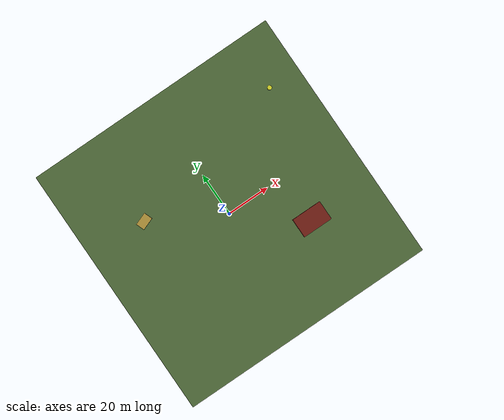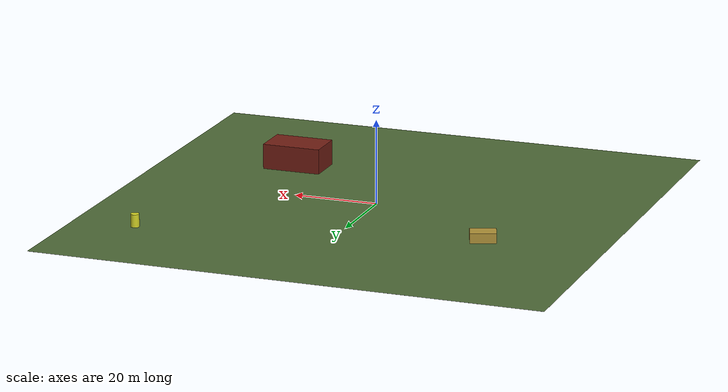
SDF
<?xml version="1.0" ?>
<sdf version="1.9">
  <world name="flat_rural_low_texture_noon">

    <scene>
      <ambient>0.550 0.550 0.550 1.000</ambient>
      <background>0.700 0.820 0.950 1.000</background>
      <shadows>true</shadows>
    </scene>

    <light name="sun" type="directional">
      <cast_shadows>true</cast_shadows>
      <pose>0 0 10 0 0 0</pose>
      <diffuse>0.9 0.86 0.76 1</diffuse>
      <specular>0.2 0.2 0.2 1</specular>
      <direction>-0.35 0.15 -0.92</direction>
    </light>

    <model name="databoss_ground">
      <static>true</static>
      <link name="ground_link">
        <collision name="ground_collision">
          <pose>0 0 -0.005 0 0 0</pose>
          <geometry>
            <box><size>120 120 0.01</size></box>
          </geometry>
        </collision>

        <visual name="uniform_ground">
          <pose>0 0 0.001 0 0 0</pose>
          <geometry>
            <box><size>120 120 0.002</size></box>
          </geometry>

          <material>
            <ambient>0.310 0.420 0.220 1.000</ambient>
            <diffuse>0.310 0.420 0.220 1.000</diffuse>
            <specular>0.05 0.05 0.05 1</specular>
          </material>
          <!-- material_id: uniform_ground -->

        </visual>

      </link>
    </model>

    <model name="barn_low">
      <static>true</static>
      <pose>28 -22 3 0 0 0</pose>
      <link name="link">
        <collision name="collision">
          <geometry>
            <box><size>14 9 6</size></box>
          </geometry>
        </collision>
        <visual name="visual">
          <geometry>
            <box><size>14 9 6</size></box>
          </geometry>

          <material>
            <ambient>0.450 0.120 0.080 1.000</ambient>
            <diffuse>0.450 0.120 0.080 1.000</diffuse>
            <specular>0.05 0.05 0.05 1</specular>
          </material>
          <!-- material_id: barn_low -->

        </visual>
      </link>
    </model>

    <model name="hay_block_a">
      <static>true</static>
      <pose>-32 18 1.2 0 0 0.35</pose>
      <link name="link">
        <collision name="collision">
          <geometry>
            <box><size>6 4 2.4</size></box>
          </geometry>
        </collision>
        <visual name="visual">
          <geometry>
            <box><size>6 4 2.4</size></box>
          </geometry>

          <material>
            <ambient>0.700 0.580 0.220 1.000</ambient>
            <diffuse>0.700 0.580 0.220 1.000</diffuse>
            <specular>0.05 0.05 0.05 1</specular>
          </material>
          <!-- material_id: hay_block_a -->

        </visual>
      </link>
    </model>

    <model name="field_marker_a">
      <static>true</static>
      <pose>45 35 1.5 0 0 0</pose>
      <link name="link">
        <collision name="collision">
          <geometry>
            <cylinder>
              <radius>1</radius>
              <length>3</length>
            </cylinder>
          </geometry>
        </collision>
        <visual name="visual">
          <geometry>
            <cylinder>
              <radius>1</radius>
              <length>3</length>
            </cylinder>
          </geometry>

          <material>
            <ambient>0.850 0.850 0.150 1.000</ambient>
            <diffuse>0.850 0.850 0.150 1.000</diffuse>
            <specular>0.05 0.05 0.05 1</specular>
          </material>
          <!-- material_id: field_marker_a -->

        </visual>
      </link>
    </model>

  </world>
</sdf>
